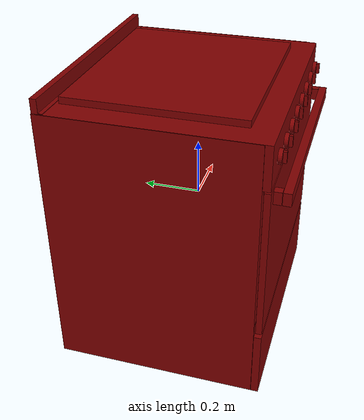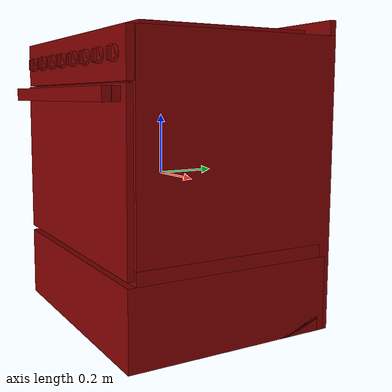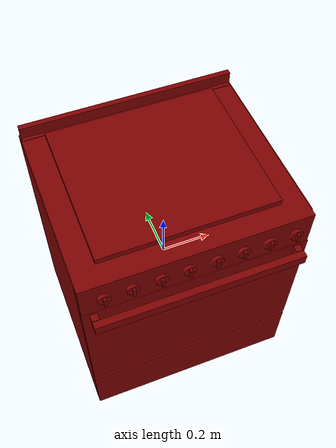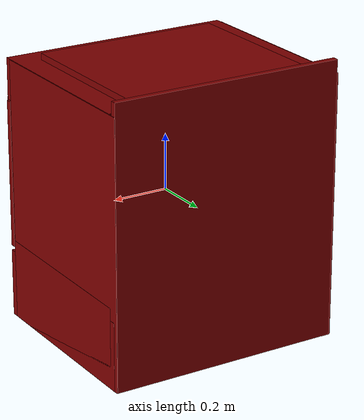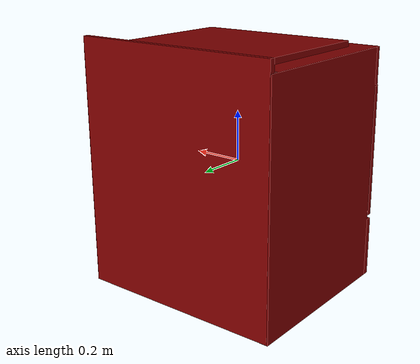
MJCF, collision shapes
<?xml version='1.0' encoding='UTF-8'?>
<mujoco model="model">
  <option timestep="0.002" gravity="0.0 0.0 -9.81"/>
  <compiler angle="radian"/>
  <asset>
    <mesh file="visuals/door.obj" name="door_vis"/>
    <mesh file="visuals/door_Clear.obj" name="door_Clear_vis"/>
    <mesh file="visuals/knob_front_center.obj" name="knob_front_center_vis"/>
    <mesh file="visuals/knob_front_left.obj" name="knob_front_left_vis"/>
    <mesh file="visuals/knob_front_right.obj" name="knob_front_right_vis"/>
    <mesh file="visuals/knob_rear_center.obj" name="knob_rear_center_vis"/>
    <mesh file="visuals/knob_rear_left.obj" name="knob_rear_left_vis"/>
    <mesh file="visuals/knob_rear_right.obj" name="knob_rear_right_vis"/>
    <mesh file="visuals/knob_temp.obj" name="knob_temp_vis"/>
    <mesh file="visuals/knob_time.obj" name="knob_time_vis"/>
    <mesh file="visuals/rack0.obj" name="rack0_vis"/>
    <mesh file="visuals/rack1.obj" name="rack1_vis"/>
    <mesh file="visuals/Body001.obj" name="Body001_vis"/>
    <texture file="visuals/T_BC001.png" name="Body001_material" type="2d"/>
    <material name="Body001_material" rgba="1 1 1 1.0" texture="Body001_material" shininess="0.4472135901451111" specular="2"/>
    <texture file="visuals/T_BC001.png" name="door_material" type="2d"/>
    <material name="door_material" rgba="1 1 1 1.0" texture="door_material" shininess="0.4472135901451111" specular="0.3103448502657381"/>
    <texture file="visuals/T_BC001.png" name="door_Clear_material" type="2d"/>
    <material name="door_Clear_material" rgba="1 1 1 0.8" texture="door_Clear_material" shininess="0.5" specular="2"/>
    <texture file="visuals/T_BC001.png" name="knob_front_center_material" type="2d"/>
    <material name="knob_front_center_material" rgba="1 1 1 1.0" texture="knob_front_center_material" shininess="0.4472135901451111" specular="0.3103448502657381"/>
    <texture file="visuals/T_BC001.png" name="knob_front_left_material" type="2d"/>
    <material name="knob_front_left_material" rgba="1 1 1 1.0" texture="knob_front_left_material" shininess="0.4472135901451111" specular="0.3103448502657381"/>
    <texture file="visuals/T_BC001.png" name="knob_front_right_material" type="2d"/>
    <material name="knob_front_right_material" rgba="1 1 1 1.0" texture="knob_front_right_material" shininess="0.4472135901451111" specular="0.3103448502657381"/>
    <texture file="visuals/T_BC001.png" name="knob_rear_center_material" type="2d"/>
    <material name="knob_rear_center_material" rgba="1 1 1 1.0" texture="knob_rear_center_material" shininess="0.4472135901451111" specular="0.3103448502657381"/>
    <texture file="visuals/T_BC001.png" name="knob_rear_left_material" type="2d"/>
    <material name="knob_rear_left_material" rgba="1 1 1 1.0" texture="knob_rear_left_material" shininess="0.4472135901451111" specular="0.3103448502657381"/>
    <texture file="visuals/T_BC001.png" name="knob_rear_right_material" type="2d"/>
    <material name="knob_rear_right_material" rgba="1 1 1 1.0" texture="knob_rear_right_material" shininess="0.4472135901451111" specular="0.3103448502657381"/>
    <texture file="visuals/T_BC001.png" name="knob_temp_material" type="2d"/>
    <material name="knob_temp_material" rgba="1 1 1 1.0" texture="knob_temp_material" shininess="0.4472135901451111" specular="0.3103448502657381"/>
    <texture file="visuals/T_BC001.png" name="knob_time_material" type="2d"/>
    <material name="knob_time_material" rgba="1 1 1 1.0" texture="knob_time_material" shininess="0.4472135901451111" specular="0.3103448502657381"/>
    <texture file="visuals/T_BC001.png" name="rack0_material" type="2d"/>
    <material name="rack0_material" rgba="1 1 1 1.0" texture="rack0_material" shininess="0.4472135901451111" specular="2"/>
    <texture file="visuals/T_BC001.png" name="rack1_material" type="2d"/>
    <material name="rack1_material" rgba="1 1 1 1.0" texture="rack1_material" shininess="0.4472135901451111" specular="2"/>
  </asset>
  <default>
    <default class="visual">
      <geom conaffinity="0" contype="0" group="1" type="mesh"/>
    </default>
    <default class="collision">
      <geom group="0" rgba="0.5 0 0 0.5"/>
    </default>
    <default class="spawn">
      <geom group="0" rgba="1 1 1 0.5" contype="0" conaffinity="0"/>
      <site group="0" rgba="1 1 1 0.5"/>
    </default>
    <default class="region">
      <geom group="1" conaffinity="0" contype="0" rgba="0 1 0 0"/>
    </default>
  </default>
  <worldbody>
    <body>
      <body name="object">
        <geom mesh="Body001_vis" type="mesh" solimp="0.998 0.998 0.001" solref="0.001 1" friction="0.95 0.3 0.1" class="visual" material="Body001_material"/>
        <geom class="collision" type="box" pos="0.36442062 -0.07107395 0.11972211" size="0.018662435933947563 0.18144045770168304 0.0023834460880607367" quat="1.0 0.0 0.0 0.0"/>
        <geom class="collision" type="box" pos="0.36442062 -0.07107395 0.08483463" size="0.018662435933947563 0.18144045770168304 0.0023834460880607367" quat="1.0 0.0 0.0 0.0"/>
        <geom class="collision" type="box" pos="0.36442062 -0.07107395 0.01778460" size="0.018662435933947563 0.18144045770168304 0.0023834460880607367" quat="1.0 0.0 0.0 0.0"/>
        <geom class="collision" type="box" pos="0.36442062 -0.07107395 -0.04949691" size="0.018662435933947563 0.18144045770168304 0.0023834460880607367" quat="1.0 0.0 0.0 0.0"/>
        <geom class="collision" type="box" pos="-0.36823025 -0.07107395 0.11972211" size="0.018662435933947563 0.18144045770168304 0.0023834460880607367" quat="1.0 0.0 0.0 0.0"/>
        <geom class="collision" type="box" pos="-0.36823025 -0.07107395 0.01778460" size="0.018662435933947563 0.18144045770168304 0.0023834460880607367" quat="1.0 0.0 0.0 0.0"/>
        <geom class="collision" type="box" pos="-0.36823025 -0.07107395 -0.04949691" size="0.018662435933947563 0.18144045770168304 0.0023834460880607367" quat="1.0 0.0 0.0 0.0"/>
        <geom class="collision" type="box" pos="-0.36697626 -0.07107395 0.08483463" size="0.018662435933947563 0.18144045770168304 0.0023834460880607367" quat="1.0 0.0 0.0 0.0"/>
        <geom class="collision" type="box" pos="-0.40745792 0.04048937 -0.02279192" size="0.016274921596050262 0.34789374470710754 0.4722433090209961" quat="1.0 0.0 0.0 0.0"/>
        <geom class="collision" type="box" pos="0.40668231 0.04017869 -0.02267685" size="0.016654742881655693 0.3475830554962158 0.47212931513786316" quat="1.0 0.0 0.0 0.0"/>
        <geom class="collision" type="box" pos="-0.00049931 0.01948482 0.37617436" size="0.42072170972824097 0.35166284441947937 0.07339657098054886" quat="1.0 0.0 0.0 0.0"/>
        <geom class="collision" type="box" pos="0.00127596 0.37787163 0.00133083" size="0.42017021775245667 0.010949005372822285 0.4954916536808014" quat="1.0 0.0 0.0 0.0"/>
        <geom class="collision" type="box" pos="-0.00002117 0.01890159 -0.37255797" size="0.42352452874183655 0.3522559106349945 0.1225961297750473" quat="1.0 0.0 0.0 0.0"/>
        <geom class="collision" type="box" pos="-0.00002117 0.01924868 -0.35098603" size="0.42352452874183655 0.3277283012866974 0.14400139451026917" quat="1.0 0.0 0.0 0.0"/>
        <geom class="collision" type="box" pos="0.00127596 0.33902419 -0.02691193" size="0.420156329870224 0.028379196301102638 0.467974990606308" quat="1.0 0.0 0.0 0.0"/>
        <geom class="collision" type="box" pos="-0.38963971 -0.07148314 0.03456661" size="0.004897887818515301 0.18065761029720306 0.14356626570224762" quat="1.0 0.0 0.0 0.0"/>
        <geom class="collision" type="box" pos="0.38668123 -0.07148314 0.03456710" size="0.004897890146821737 0.18065761029720306 0.1435663253068924" quat="1.0 0.0 0.0 0.0"/>
        <geom class="collision" type="box" pos="-0.00049931 0.01948482 0.31828767" size="0.3940332233905792 0.3293551504611969 0.04628801345825195" quat="1.0 0.0 0.0 0.0"/>
        <geom class="collision" type="box" pos="-0.00000024 0.04557000 0.46096796" size="0.33345237374305725 0.29586857557296753 0.011515788733959198" quat="1.0 0.0 0.0 0.0"/>
        <geom class="collision" type="box" pos="0.00000004 0.35967815 0.45040563" size="0.41833364963531494 0.00724449660629034 0.001000917167402804" quat="1.0 0.0 0.0 0.0"/>
        <body name="door">
          <joint axis="1.0 0.0 0.0" pos="-0.00000008 -0.32220954 -0.22697541" limited="true" name="door_joint" range="0.0 1.5707963267948966" type="hinge" damping="1" frictionloss="1" armature=".01" stiffness="1" springref="-4"/>
          <geom mesh="door_vis" type="mesh" solimp="0.998 0.998 0.001" solref="0.001 1" friction="0.95 0.3 0.1" class="visual" material="door_material"/>
          <geom class="collision" type="box" pos="-0.00000000 -0.32338038 0.03300362" size="0.42301270365715027 0.010427734814584255 0.265535831451416" quat="1.0 0.0 0.0 0.0" name="door_main"/>
          <geom class="collision" type="box" pos="-0.38080359 -0.34805244 0.26990244" size="0.013406136073172092 0.012864393182098866 0.021215109154582024" quat="1.0 0.0 0.0 0.0"/>
          <geom class="collision" type="box" pos="0.37891248 -0.34805244 0.26990244" size="0.013406136073172092 0.012864393182098866 0.021215109154582024" quat="1.0 0.0 0.0 0.0"/>
          <geom class="collision" type="box" pos="-0.00094554 -0.37582538 0.26990244" size="0.39326414465904236 0.013490837998688221 0.021215109154582024" quat="1.0 0.0 0.0 0.0" name="door_handle_main"/>
          <geom class="collision" type="box" pos="-0.00000002 -0.32257232 0.09607217" size="0.41250625252723694 0.006797316949814558 0.19522199034690857" quat="1.0 0.0 0.0 0.0"/>
          <body name="door_Clear">
            <geom mesh="door_Clear_vis" type="mesh" solimp="0.998 0.998 0.001" solref="0.001 1" friction="0.95 0.3 0.1" class="visual" material="door_Clear_material"/>
            <geom class="collision" type="box" pos="-0.00000002 -0.32257232 0.09607217" size="0.41250625252723694 0.006797316949814558 0.19522199034690857" quat="1.0 0.0 0.0 0.0"/>
          </body>
        </body>
        <body name="knob_front_center">
          <joint axis="0.0 -1.0 0.0" pos="0.05981584 -0.34303910 0.37707967" limited="true" name="knob_front_center_joint" range="0.0 3.141592653589793" type="hinge" damping="0.05" frictionloss="0.75" armature="1"/>
          <geom mesh="knob_front_center_vis" type="mesh" solimp="0.998 0.998 0.001" solref="0.001 1" friction="0.95 0.3 0.1" class="visual" material="knob_front_center_material"/>
          <geom class="collision" type="cylinder" pos="0.05974300 -0.34062976 0.37687969" size="0.02347167767584324 0.006403839215636253" quat="0.7071067094802856 0.70710688829422 -1.5700929612083792e-16 2.2148514736588345e-23" friction="100 0.5 0.01"/>
          <geom class="collision" type="box" pos="0.05910010 -0.35056436 0.37643027" size="0.005083238240331411 0.007866290397942066 0.018166102468967438" quat="1.0 0.0 0.0 0.0" name="knob_front_center_main" friction="100 0.5 0.01"/>
        </body>
        <body name="knob_front_left">
          <joint axis="0.0 -1.0 0.0" pos="-0.33796531 -0.34303898 0.37707955" limited="true" name="knob_front_left_joint" range="0.0 3.141592653589793" type="hinge" damping="0.05" frictionloss="0.75" armature="1"/>
          <geom mesh="knob_front_left_vis" type="mesh" solimp="0.998 0.998 0.001" solref="0.001 1" friction="0.95 0.3 0.1" class="visual" material="knob_front_left_material"/>
          <geom class="collision" type="cylinder" pos="-0.33822209 -0.34062976 0.37680575" size="0.02347167767584324 0.006403839215636253" quat="0.7071067094802856 0.70710688829422 -1.5700929612083792e-16 2.2148514736588345e-23" friction="100 0.5 0.01"/>
          <geom class="collision" type="box" pos="-0.33886498 -0.35056436 0.37635633" size="0.005083238240331411 0.007866299711167812 0.018166111782193184" quat="1.0 0.0 0.0 0.0" name="knob_front_left_main" friction="100 0.5 0.01"/>
        </body>
        <body name="knob_front_right">
          <joint axis="0.0 -1.0 0.0" pos="0.35715580 -0.34303907 0.37707967" limited="true" name="knob_front_right_joint" range="0.0 3.141592653589793" type="hinge" damping="0.05" armature="1" frictionloss="0.75"/>
          <geom mesh="knob_front_right_vis" type="mesh" solimp="0.998 0.998 0.001" solref="0.001 1" friction="0.95 0.3 0.1" class="visual" material="knob_front_right_material"/>
          <geom class="collision" type="cylinder" pos="0.35743338 -0.34062976 0.37707686" size="0.02347167767584324 0.006403839215636253" quat="0.7071067094802856 0.70710688829422 -1.5700929612083792e-16 2.2148514736588345e-23" friction="100 0.5 0.01"/>
          <geom class="collision" type="box" pos="0.35679036 -0.35056436 0.37662745" size="0.005083238240331411 0.00786630716174841 0.01816612109541893" quat="1.0 0.0 0.0 0.0" name="knob_front_right_main" friction="100 0.5 0.01"/>
        </body>
        <body name="knob_rear_center">
          <joint axis="0.0 -1.0 0.0" pos="0.15863809 -0.34303910 0.37707967" limited="true" name="knob_rear_center_joint" range="0.0 3.141592653589793" type="hinge" damping="0.05" frictionloss="0.75" armature="1"/>
          <geom mesh="knob_rear_center_vis" type="mesh" solimp="0.998 0.998 0.001" solref="0.001 1" friction="0.95 0.3 0.1" class="visual" material="knob_rear_center_material"/>
          <geom class="collision" type="cylinder" pos="0.15876567 -0.34062976 0.37673771" size="0.02347167767584324 0.006403839215636253" quat="0.7071067094802856 0.70710688829422 -1.5700929612083792e-16 2.2148514736588345e-23" friction="100 0.5 0.01"/>
          <geom class="collision" type="box" pos="0.15812278 -0.35056436 0.37628829" size="0.005083238240331411 0.007866575382649899 0.018166430294513702" quat="1.0 0.0 0.0 0.0" name="knob_rear_center_main" friction="100 0.5 0.01"/>
        </body>
        <body name="knob_rear_left">
          <joint axis="0.0 -1.0 0.0" pos="-0.23807894 -0.34303898 0.37707955" limited="true" name="knob_rear_left_joint" range="0.0 3.141592653589793" type="hinge" damping="0.05" frictionloss="0.75" armature="1"/>
          <geom mesh="knob_rear_left_vis" type="mesh" solimp="0.998 0.998 0.001" solref="0.001 1" friction="0.95 0.3 0.1" class="visual" material="knob_rear_left_material"/>
          <geom class="collision" type="cylinder" pos="-0.23820667 -0.34062976 0.37707686" size="0.02347167767584324 0.006403839215636253" quat="0.7071067094802856 0.70710688829422 -1.5700929612083792e-16 2.2148514736588345e-23" friction="100 0.5 0.01"/>
          <geom class="collision" type="box" pos="-0.23884957 -0.35056436 0.37662745" size="0.005083238240331411 0.00786627922207117 0.018166089430451393" quat="1.0 0.0 0.0 0.0" name="knob_rear_left_main" friction="100 0.5 0.01"/>
        </body>
        <body name="knob_rear_right">
          <joint axis="0.0 -1.0 0.0" pos="0.25762111 -0.34303915 0.37707967" limited="true" name="knob_rear_right_joint" range="0.0 3.141592653589793" type="hinge" damping="0.05" frictionloss="0.75" armature="1"/>
          <geom mesh="knob_rear_right_vis" type="mesh" solimp="0.998 0.998 0.001" solref="0.001 1" friction="0.95 0.3 0.1" class="visual" material="knob_rear_right_material"/>
          <geom class="collision" type="cylinder" pos="0.25769719 -0.34062976 0.37678111" size="0.02347167767584324 0.006403839215636253" quat="0.7071067094802856 0.70710688829422 -1.5700929612083792e-16 2.2148514736588345e-23" friction="100 0.5 0.01"/>
          <geom class="collision" type="box" pos="0.25705418 -0.35056436 0.37633169" size="0.005083238240331411 0.007866299711167812 0.018166111782193184" quat="1.0 0.0 0.0 0.0" name="knob_rear_right_main" friction="100 0.5 0.01"/>
        </body>
        <body name="knob_temp">
          <joint axis="0.0 1.0 0.0" pos="-0.13864596 -0.34303907 0.37707967" limited="true" name="knob_temp_joint" range="0.0 3.2288591161895095" type="hinge" damping="0.05" frictionloss="0.75" armature="1"/>
          <geom mesh="knob_temp_vis" type="mesh" solimp="0.998 0.998 0.001" solref="0.001 1" friction="0.95 0.3 0.1" class="visual" material="knob_temp_material"/>
          <geom class="collision" type="cylinder" pos="-0.13827902 -0.34062976 0.37697828" size="0.02347167767584324 0.006403839215636253" quat="0.7071067094802856 0.70710688829422 -1.5700929612083792e-16 2.2148514736588345e-23" friction="100 0.5 0.01"/>
          <geom class="collision" type="box" pos="-0.13892192 -0.35056436 0.37652886" size="0.005083238240331411 0.00786630716174841 0.01816612109541893" quat="1.0 0.0 0.0 0.0" name="knob_temp_main" friction="100 0.5 0.01"/>
        </body>
        <body name="knob_time">
          <joint axis="0.0 1.0 0.0" pos="-0.03929348 -0.34303910 0.37707967" limited="true" name="knob_time_joint" range="0.0 3.979350694547071" type="hinge" damping="0.05" armature="1" frictionloss="0.75"/>
          <geom mesh="knob_time_vis" type="mesh" solimp="0.998 0.998 0.001" solref="0.001 1" friction="0.95 0.3 0.1" class="visual" material="knob_time_material"/>
          <geom class="collision" type="cylinder" pos="-0.03930022 -0.34062976 0.37717548" size="0.02347167767584324 0.006403839215636253" quat="0.7071067094802856 0.70710688829422 -1.5700929612083792e-16 2.2148514736588345e-23" friction="100 0.5 0.01"/>
          <geom class="collision" type="box" pos="-0.03994312 -0.35056436 0.37672606" size="0.005083238240331411 0.007866312749683857 0.018166128545999527" quat="1.0 0.0 0.0 0.0" name="knob_time_main" friction="100 0.5 0.01"/>
        </body>
        <body name="rack0">
          <geom class="region" name="reg_rack0" type="box" pos="-0.0009109050000000174 -0.07106946000000001 0.027675835000000003" size="0.341970575 0.20676559 0.058923885"/>
          <joint axis="0.0 -1.0 0.0" pos="0.00067105 -0.07070274 -0.04004359" limited="true" name="rack0_joint" range="0.0 0.34" type="slide" damping="1" frictionloss="1" armature=".01" stiffness="0.05"/>
          <geom mesh="rack0_vis" type="mesh" solimp="0.998 0.998 0.001" solref="0.001 1" friction="0.95 0.3 0.1" class="visual" material="rack0_material"/>
          <geom class="collision" type="box" pos="0.00000000 -0.07070269 -0.03966287" size="0.3694811463356018 0.21092276275157928 0.006707852240651846" quat="1.0 0.0 0.0 0.0"/>
        </body>
        <body name="rack1">
          <geom class="region" name="reg_rack1" type="box" pos="-0.0005254450000000133 -0.07104399500000001 0.186935515" size="0.342461595 0.206797195 0.08293781500000001"/>
          <joint axis="0.0 -1.0 0.0" pos="0.00052660 -0.07070275 0.09464755" limited="true" name="rack1_joint" range="0.0 0.34" type="slide" damping="1" frictionloss="1" armature=".01" stiffness="0.05"/>
          <geom mesh="rack1_vis" type="mesh" solimp="0.998 0.998 0.001" solref="0.001 1" friction="0.95 0.3 0.1" class="visual" material="rack1_material"/>
          <geom class="collision" type="box" pos="0.00000000 -0.07070240 0.09494178" size="0.3687414228916168 0.2109231799840927 0.00684721302241087" quat="1.0 0.0 0.0 0.0"/>
        </body>
        <site type="cylinder" rgba="0.3 0.4 1 0.5" size="0.0381271168589592 0.014030364342033863" pos="-0.22235025 0.21393515 0.44946471" name="burner_on_rear_left"/>
        <site type="cylinder" rgba="0.3 0.4 1 0.5" size="0.03225818648934364 0.014232753776013851" pos="0.22242302 0.21431790 0.44925427" name="burner_on_rear_right"/>
        <site type="cylinder" rgba="0.3 0.4 1 0.5" size="0.0357445552945137 0.014081882312893867" pos="-0.22205293 -0.12382008 0.44997364" name="burner_on_front_left"/>
        <site type="cylinder" rgba="0.3 0.4 1 0.5" size="0.05448267608880997 0.014307087287306786" pos="-0.00075421 -0.12175559 0.44951719" name="burner_on_front_center"/>
        <site type="cylinder" rgba="0.3 0.4 1 0.5" size="0.02403990738093853 0.013180036097764969" pos="0.22217818 -0.12353557 0.45021281" name="burner_on_front_right"/>
        <geom class="region" name="reg_int" type="box" pos="-0.0011198350000000135 2.5180000000013525e-05 0.03339354500000001" size="0.342318505 0.30635233 0.236213595"/>
        <site type="cylinder" rgba="0.3 0.4 1 0.5" size="0.04445645958185196 0.01621667668223381" pos="-0.00063508 0.21320999 0.44752738" name="burner_on_rear_center"/>
        <site type="cylinder" rgba="0.5 0 0 0" size="0.0381271168589592 5.0009035476250574e-05" pos="-0.22235025 0.21393515 0.47253746" name="burner_rear_left_place_site"/>
        <site type="cylinder" rgba="0.5 0 0 0" size="0.03225818648934364 4.9993210268439725e-05" pos="0.22242302 0.21431790 0.47253734" name="burner_rear_right_place_site"/>
        <site type="cylinder" rgba="0.5 0 0 0" size="0.0357445552945137 5.002266698284075e-05" pos="-0.22205293 -0.12382008 0.47253746" name="burner_front_left_place_site"/>
        <site type="cylinder" rgba="0.5 0 0 0" size="0.05448267608880997 5.000790042686276e-05" pos="-0.00075421 -0.12175559 0.47253731" name="burner_front_center_place_site"/>
        <site type="cylinder" rgba="0.5 0 0 0" size="0.02403990738093853 5.001014142180793e-05" pos="0.22217818 -0.12353557 0.47253808" name="burner_front_right_place_site"/>
        <site type="cylinder" rgba="0.5 0 0 0" size="0.04445645958185196 5.0020829803543165e-05" pos="-0.00063508 0.21320997 0.47253621" name="burner_rear_center_place_site"/>
        <geom class="region" name="reg_main" type="box" pos="0.0 0.027295525000000015 -0.02282063000000001" size="0.42487855 0.362577095 0.47342549"/>
      </body>
    </body>
  </worldbody>
  <actuator>
    <motor name="door_joint_actuator" joint="door_joint" gear="50"/>
    <motor name="knob_front_center_joint_actuator" joint="knob_front_center_joint" gear="50"/>
    <motor name="knob_front_left_joint_actuator" joint="knob_front_left_joint" gear="50"/>
    <motor name="knob_front_right_joint_actuator" joint="knob_front_right_joint" gear="50"/>
    <motor name="knob_rear_center_joint_actuator" joint="knob_rear_center_joint" gear="50"/>
    <motor name="knob_rear_left_joint_actuator" joint="knob_rear_left_joint" gear="50"/>
    <motor name="knob_rear_right_joint_actuator" joint="knob_rear_right_joint" gear="50"/>
    <motor name="knob_temp_joint_actuator" joint="knob_temp_joint" gear="50"/>
    <motor name="knob_time_joint_actuator" joint="knob_time_joint" gear="50"/>
    <motor name="rack0_joint_actuator" joint="rack0_joint" gear="50"/>
    <motor name="rack1_joint_actuator" joint="rack1_joint" gear="50"/>
  </actuator>
</mujoco>
